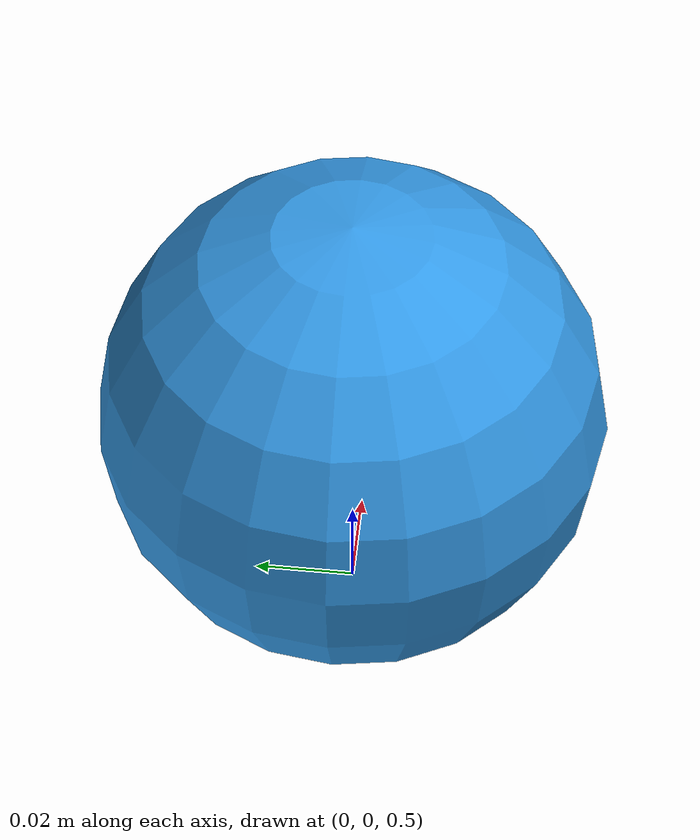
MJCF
<mujoco model="elastic-bounce">
  <compiler angle="radian"/>
  <option gravity="0 0 -9.81" timestep="0.0005" integrator="RK4">
    <flag energy="enable"/>
  </option>

  <default>
    <geom solref="-10000 -0.99" solimp="0.99 0.99 0.001 0.5 2"/>
  </default>

  <worldbody>
    <geom name="floor" type="plane" size="2 2 0.01" rgba="0.3 0.3 0.3 1"/>
    <body name="ball" pos="0 0 0.55">
      <freejoint name="free"/>
      <inertial pos="0 0 0" mass="1.0" diaginertia="0.001 0.001 0.001"/>
      <geom name="sphere" type="sphere" size="0.05" condim="1"
            rgba="0.2 0.6 0.9 1"/>
    </body>
  </worldbody>
</mujoco>
